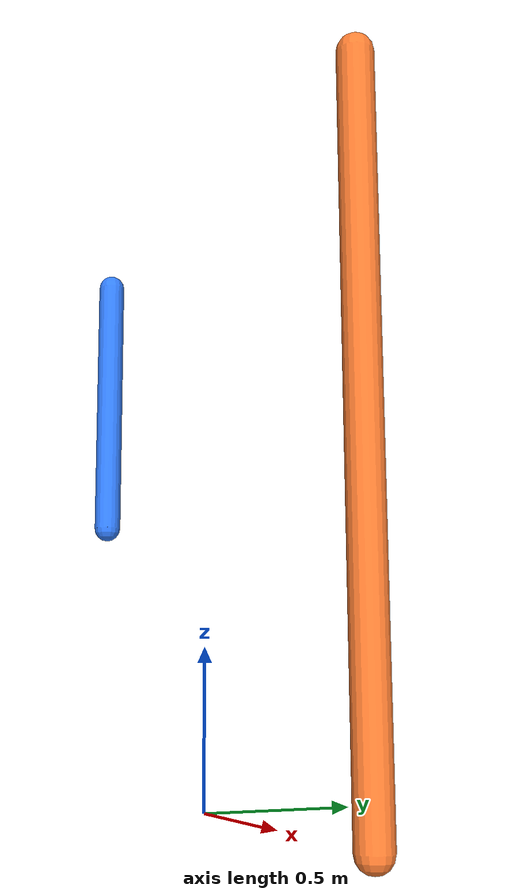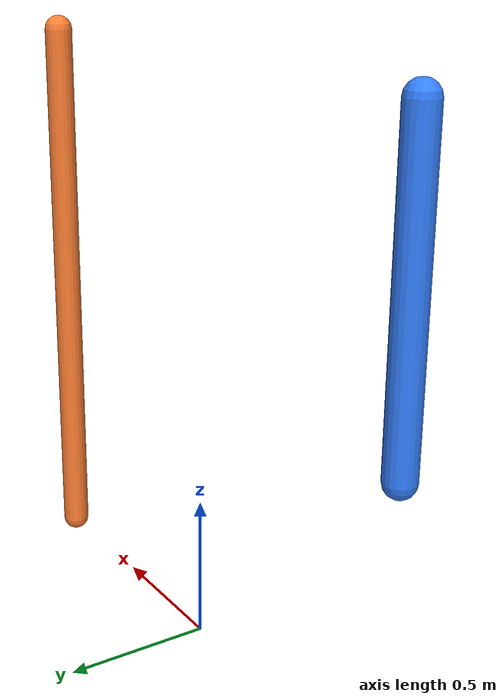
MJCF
<mujoco>
  <option gravity="0 0 -9.81" />
  <worldbody>
    <body name="object_3" pos="-1 0 2" />
    <body name="object_4" pos="1 0 2" />
    <body name="object_1" pos="-1 0 2">
      <joint name="object_1_joint" type="hinge" axis="0 1 0" />
      <geom type="capsule" fromto="0 0 0 0 0 -1" size="0.05" density="0.5" rgba="0.2 0.5 1 1" />
    </body>
    <body name="object_2" pos="1 0 2">
      <joint name="object_2_joint" type="hinge" axis="0 1 0" />
      <geom type="capsule" fromto="0 0 0 0 0 -2" size="0.05" density="0.5" rgba="1 0.5 0.2 1" />
    </body>
  </worldbody>
</mujoco>
